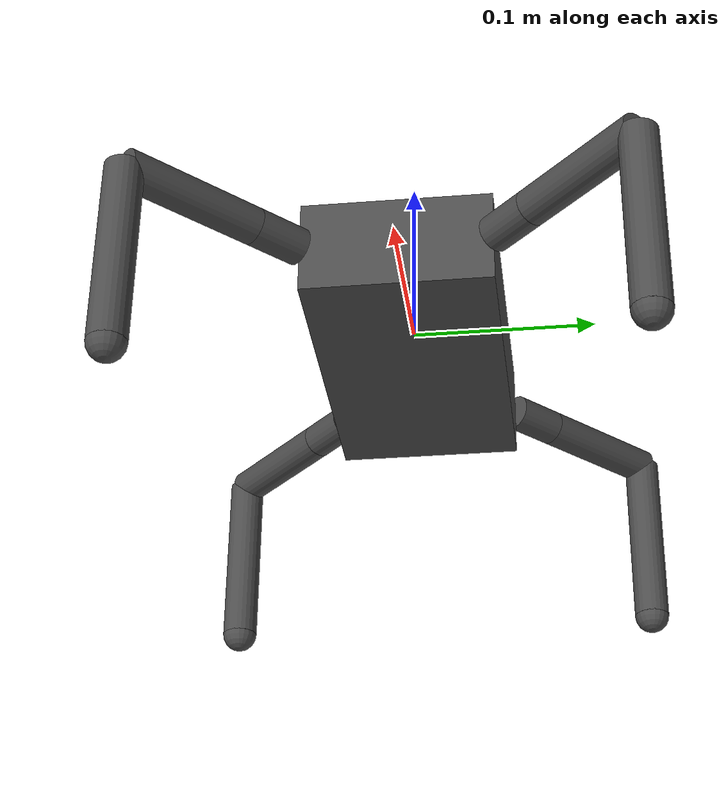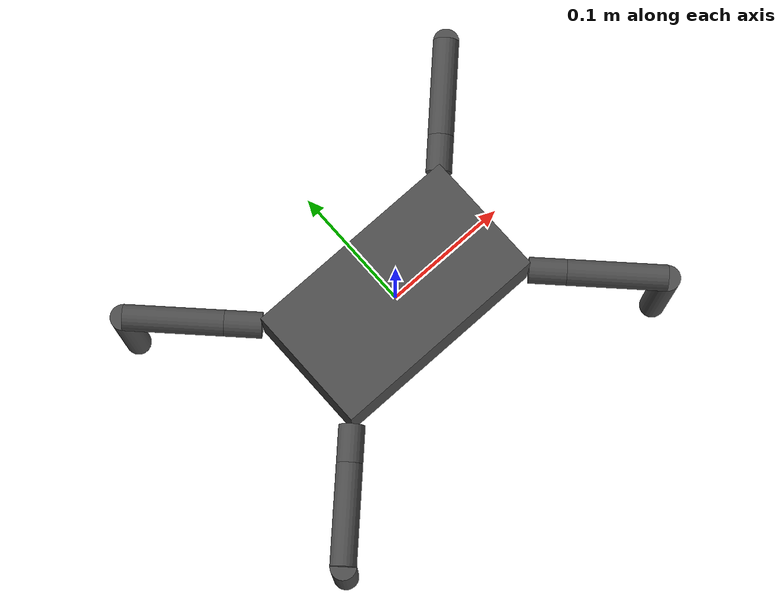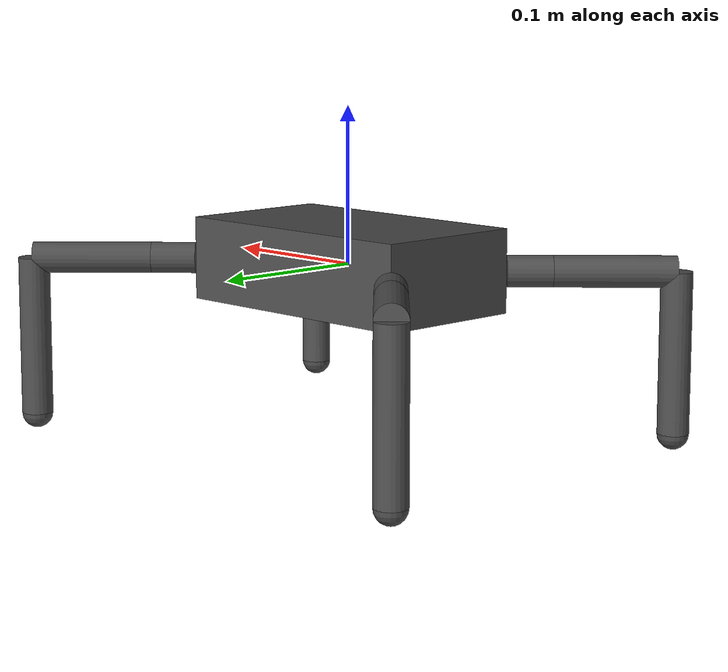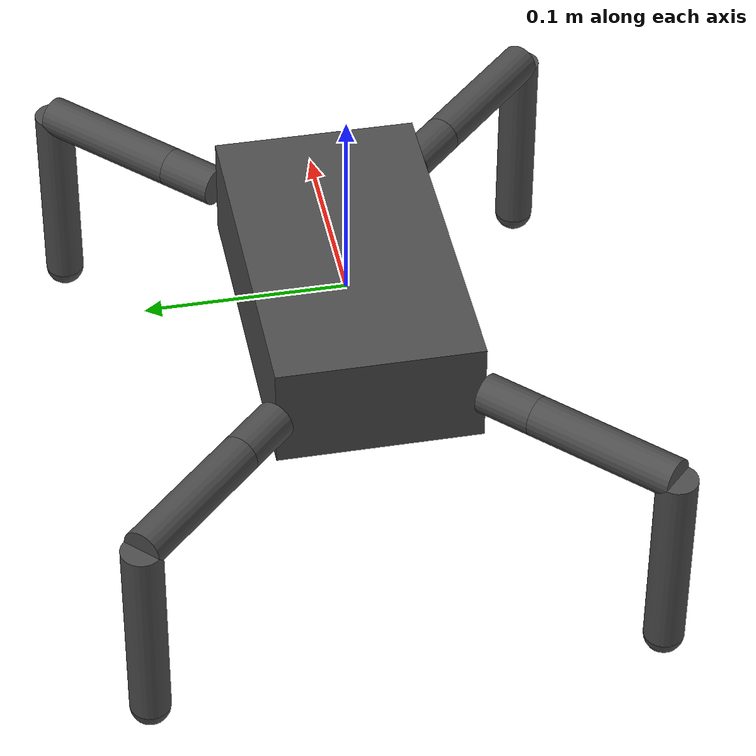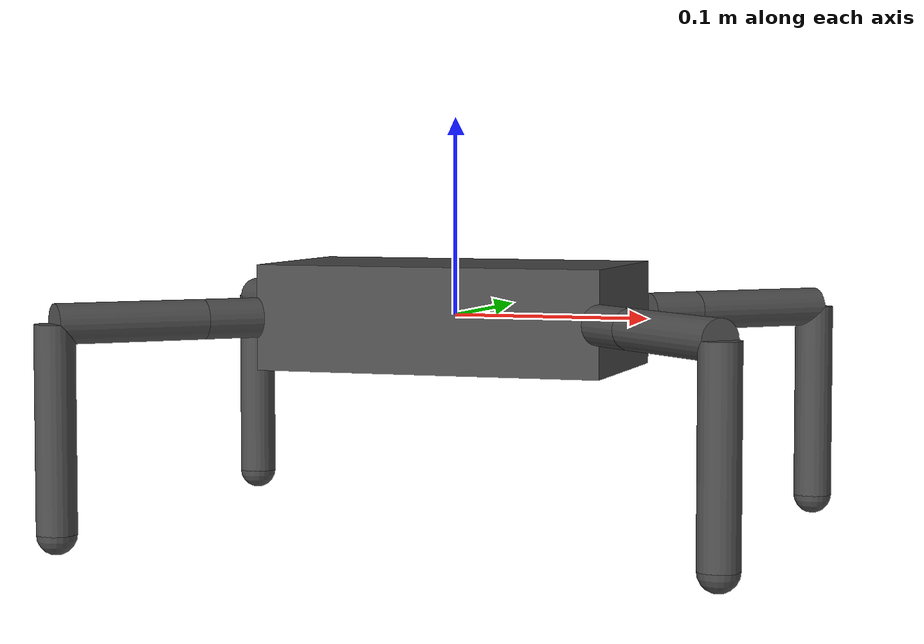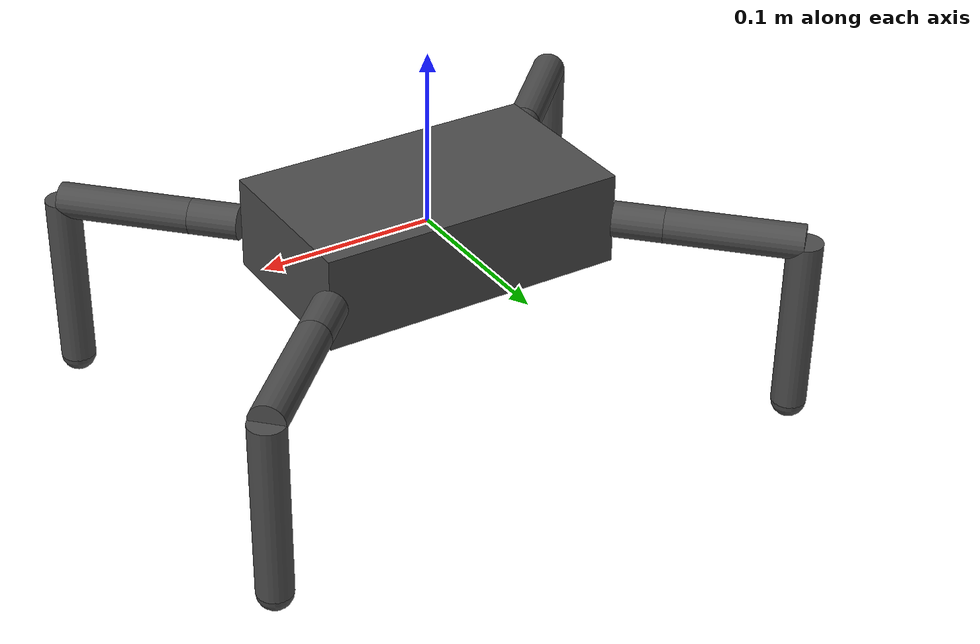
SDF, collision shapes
<sdf version='1.6'>
    <model name='quadruped'>
      <link name='base_link'>
        <inertial>
          <pose>0 0 0 0 -0 0</pose>
          <mass>0.5</mass>
          <inertia>
            <ixx>0.000542083</ixx>
            <ixy>0</ixy>
            <ixz>0</ixz>
            <iyy>0.00142242</iyy>
            <iyz>0</iyz>
            <izz>0.00173042</izz>
          </inertia>
        </inertial>
        <collision name='base_link_collision'>
          <pose>0 0 0 0 -0 0</pose>
          <geometry>
            <box>
              <size>0.177 0.101 0.053</size>
            </box>
          </geometry>
          <surface>
            <friction>
              <ode>
                <mu2>1</mu2>
                <fdir1>1 0 0</fdir1>
                <mu1>1.0</mu1>
              </ode>
            </friction>
            <contact>
              <ode>
                <kp>1e+15</kp>
                <kd>1e+13</kd>
              </ode>
            </contact>
          </surface>
        </collision>
        <visual name='base_link_visual'>
          <pose>0 0 -0.0265 0 -0 0</pose>
          <geometry>
            <mesh>
              <scale>1 1 1</scale>
              <uri>model://quadruped/meshes/hexapod_body.stl</uri>
            </mesh>
          </geometry>
          <material>
            <script>
              <name>Gazebo/DarkGray</name>
              <uri>file://media/materials/scripts/gazebo.material</uri>
            </script>
          </material>
        </visual>
        <gravity>1</gravity>
        <velocity_decay/>
      </link>
      <joint name='coxa_bl_joint' type='revolute'>
        <pose relative_to='base_link'>-0.0885 0.0505 0 0 -0 2.35619</pose>
        <parent>base_link</parent>
        <child>coxa_bl_link</child>
        <axis>
          <xyz>0 0 1</xyz>
          <limit>
            <lower>-1.5708</lower>
            <upper>1.5708</upper>
            <effort>100</effort>
            <velocity>0.5</velocity>
          </limit>
          <dynamics>
            <spring_reference>0</spring_reference>
            <spring_stiffness>0</spring_stiffness>
          </dynamics>
        </axis>
        <physics>
          <ode>
            <limit>
              <cfm>0</cfm>
              <erp>0.2</erp>
            </limit>
          </ode>
        </physics>
      </joint>
      <link name='coxa_bl_link'>
        <pose relative_to='coxa_bl_joint'>0 0 0 0 -0 0</pose>
        <inertial>
          <pose>0.01425 0 0 0 1.5708 0</pose>
          <mass>0.1</mass>
          <inertia>
            <ixx>9.26875e-06</ixx>
            <ixy>0</ixy>
            <ixz>0</ixz>
            <iyy>9.26875e-06</iyy>
            <iyz>0</iyz>
            <izz>5e-06</izz>
          </inertia>
        </inertial>
        <collision name='coxa_bl_link_collision'>
          <pose>0.01425 0 0 0 1.5708 0</pose>
          <geometry>
            <cylinder>
              <length>0.0285</length>
              <radius>0.01</radius>
            </cylinder>
          </geometry>
          <surface>
            <friction>
              <ode>
                <mu2>1</mu2>
                <fdir1>1 0 0</fdir1>
                <mu1>1.0</mu1>
              </ode>
            </friction>
            <contact>
              <ode/>
            </contact>
          </surface>
        </collision>
        <visual name='coxa_bl_link_visual'>
          <pose>0 0 0.0196 0 -0 0</pose>
          <geometry>
            <mesh>
              <scale>1 1 1</scale>
              <uri>model://quadruped/meshes/hexapod_coxa_l.stl</uri>
            </mesh>
          </geometry>
          <material>
            <script>
              <name>Gazebo/DarkGray</name>
              <uri>file://media/materials/scripts/gazebo.material</uri>
            </script>
          </material>
        </visual>
        <gravity>1</gravity>
        <velocity_decay/>
      </link>
      <joint name='femur_bl_joint' type='revolute'>
        <pose relative_to='coxa_bl_link'>0.0285 0 0 0 -0 0</pose>
        <parent>coxa_bl_link</parent>
        <child>femur_bl_link</child>
        <axis>
          <xyz>0 1 0</xyz>
          <limit>
            <lower>-1.5708</lower>
            <upper>1.5708</upper>
            <effort>100</effort>
            <velocity>0.5</velocity>
          </limit>
          <dynamics>
            <spring_reference>0</spring_reference>
            <spring_stiffness>0</spring_stiffness>
          </dynamics>
        </axis>
        <physics>
          <ode>
            <limit>
              <cfm>0</cfm>
              <erp>0.2</erp>
            </limit>
          </ode>
        </physics>
      </joint>
      <link name='femur_bl_link'>
        <pose relative_to='femur_bl_joint'>0 0 0 0 -0 0</pose>
        <inertial>
          <pose>0.0381 0 0 0 1.5708 0</pose>
          <mass>0.1</mass>
          <inertia>
            <ixx>5.0887e-05</ixx>
            <ixy>0</ixy>
            <ixz>0</ixz>
            <iyy>5.0887e-05</iyy>
            <iyz>0</iyz>
            <izz>5e-06</izz>
          </inertia>
        </inertial>
        <collision name='femur_bl_link_collision'>
          <pose>0.0381 0 0 0 1.5708 0</pose>
          <geometry>
            <cylinder>
              <length>0.0762</length>
              <radius>0.01</radius>
            </cylinder>
          </geometry>
          <surface>
            <friction>
              <ode>
                <mu2>1</mu2>
                <fdir1>1 0 0</fdir1>
                <mu1>1.0</mu1>
              </ode>
            </friction>
            <contact>
              <ode/>
            </contact>
          </surface>
        </collision>
        <visual name='femur_bl_link_visual'>
          <pose>0 -0.026 0 0 -0 0</pose>
          <geometry>
            <mesh>
              <scale>1 1 1</scale>
              <uri>model://quadruped/meshes/hexapod_femur_l.stl</uri>
            </mesh>
          </geometry>
          <material>
            <script>
              <name>Gazebo/DarkGray</name>
              <uri>file://media/materials/scripts/gazebo.material</uri>
            </script>
          </material>
        </visual>
        <gravity>1</gravity>
        <velocity_decay/>
      </link>
      <joint name='tibia_bl_joint' type='revolute'>
        <pose relative_to='femur_bl_link'>0.0762 0 0 0 -0 0</pose>
        <parent>femur_bl_link</parent>
        <child>tibia_bl_link</child>
        <axis>
          <xyz>0 1 0</xyz>
          <limit>
            <lower>-1.5708</lower>
            <upper>1.5708</upper>
            <effort>100</effort>
            <velocity>0.5</velocity>
          </limit>
          <dynamics>
            <spring_reference>0</spring_reference>
            <spring_stiffness>0</spring_stiffness>
          </dynamics>
        </axis>
        <physics>
          <ode>
            <limit>
              <cfm>0</cfm>
              <erp>0.2</erp>
            </limit>
          </ode>
        </physics>
      </joint>
      <link name='tibia_bl_link'>
        <pose relative_to='tibia_bl_joint'>0 0 0 0 -0 0</pose>
        <inertial>
          <pose>0 0 -0.051 0 -0 0</pose>
          <mass>0.1</mass>
          <inertia>
            <ixx>8.92e-05</ixx>
            <ixy>0</ixy>
            <ixz>0</ixz>
            <iyy>8.92e-05</iyy>
            <iyz>0</iyz>
            <izz>5e-06</izz>
          </inertia>
        </inertial>
        <collision name='tibia_bl_link_collision'>
          <pose>0 0 -0.051 0 -0 0</pose>
          <geometry>
            <cylinder>
              <length>0.102</length>
              <radius>0.01</radius>
            </cylinder>
          </geometry>
          <surface>
            <friction>
              <ode>
                <mu2>1</mu2>
                <fdir1>1 0 0</fdir1>
                <mu1>1.0</mu1>
              </ode>
            </friction>
            <contact>
              <ode/>
            </contact>
          </surface>
        </collision>
        <collision name='tibia_bl_link_fixed_joint_lump__foot_bl_link_collision_1'>
          <pose>0 0 -0.102 0 -0 0</pose>
          <geometry>
            <sphere>
              <radius>0.01</radius>
            </sphere>
          </geometry>
          <surface>
            <friction>
              <ode>
                <mu2>1</mu2>
                <fdir1>1 0 0</fdir1>
                <mu1>1.0</mu1>
              </ode>
              <torsional>
                <coefficient>1</coefficient>
                <surface_radius>0.01</surface_radius>
                <use_patch_radius>0</use_patch_radius>
              </torsional>
            </friction>
            <contact>
              <ode>
                <kp>1e+15</kp>
                <kd>1e+13</kd>
              </ode>
            </contact>
          </surface>
        </collision>
        <visual name='tibia_bl_link_visual'>
          <pose>0 -0.0185 0 0 -0 0</pose>
          <geometry>
            <mesh>
              <scale>1 1 1</scale>
              <uri>model://quadruped/meshes/hexapod_tibia_l.stl</uri>
            </mesh>
          </geometry>
          <material>
            <script>
              <name>Gazebo/DarkGray</name>
              <uri>file://media/materials/scripts/gazebo.material</uri>
            </script>
          </material>
        </visual>
        <velocity_decay/>
        <gravity>1</gravity>
        <velocity_decay/>
      </link>
      <joint name='coxa_br_joint' type='revolute'>
        <pose relative_to='base_link'>-0.0885 -0.0505 0 0 0 -2.35619</pose>
        <parent>base_link</parent>
        <child>coxa_br_link</child>
        <axis>
          <xyz>0 0 1</xyz>
          <limit>
            <lower>-1.5708</lower>
            <upper>1.5708</upper>
            <effort>100</effort>
            <velocity>0.5</velocity>
          </limit>
          <dynamics>
            <spring_reference>0</spring_reference>
            <spring_stiffness>0</spring_stiffness>
          </dynamics>
        </axis>
        <physics>
          <ode>
            <limit>
              <cfm>0</cfm>
              <erp>0.2</erp>
            </limit>
          </ode>
        </physics>
      </joint>
      <link name='coxa_br_link'>
        <pose relative_to='coxa_br_joint'>0 0 0 0 -0 0</pose>
        <inertial>
          <pose>0.01425 0 0 0 1.5708 0</pose>
          <mass>0.1</mass>
          <inertia>
            <ixx>9.26875e-06</ixx>
            <ixy>0</ixy>
            <ixz>0</ixz>
            <iyy>9.26875e-06</iyy>
            <iyz>0</iyz>
            <izz>5e-06</izz>
          </inertia>
        </inertial>
        <collision name='coxa_br_link_collision'>
          <pose>0.01425 0 0 0 1.5708 0</pose>
          <geometry>
            <cylinder>
              <length>0.0285</length>
              <radius>0.01</radius>
            </cylinder>
          </geometry>
          <surface>
            <friction>
              <ode>
                <mu2>1</mu2>
                <fdir1>1 0 0</fdir1>
                <mu1>1.0</mu1>
              </ode>
            </friction>
            <contact>
              <ode/>
            </contact>
          </surface>
        </collision>
        <visual name='coxa_br_link_visual'>
          <pose>0 0 0.0196 0 -0 0</pose>
          <geometry>
            <mesh>
              <scale>1 1 1</scale>
              <uri>model://quadruped/meshes/hexapod_coxa_r.stl</uri>
            </mesh>
          </geometry>
          <material>
            <script>
              <name>Gazebo/DarkGray</name>
              <uri>file://media/materials/scripts/gazebo.material</uri>
            </script>
          </material>
        </visual>
        <gravity>1</gravity>
        <velocity_decay/>
      </link>
      <joint name='femur_br_joint' type='revolute'>
        <pose relative_to='coxa_br_link'>0.0285 0 0 0 -0 0</pose>
        <parent>coxa_br_link</parent>
        <child>femur_br_link</child>
        <axis>
          <xyz>0 1 0</xyz>
          <limit>
            <lower>-1.5708</lower>
            <upper>1.5708</upper>
            <effort>100</effort>
            <velocity>0.5</velocity>
          </limit>
          <dynamics>
            <spring_reference>0</spring_reference>
            <spring_stiffness>0</spring_stiffness>
          </dynamics>
        </axis>
        <physics>
          <ode>
            <limit>
              <cfm>0</cfm>
              <erp>0.2</erp>
            </limit>
          </ode>
        </physics>
      </joint>
      <link name='femur_br_link'>
        <pose relative_to='femur_br_joint'>0 0 0 0 -0 0</pose>
        <inertial>
          <pose>0.0381 0 0 0 1.5708 0</pose>
          <mass>0.1</mass>
          <inertia>
            <ixx>5.0887e-05</ixx>
            <ixy>0</ixy>
            <ixz>0</ixz>
            <iyy>5.0887e-05</iyy>
            <iyz>0</iyz>
            <izz>5e-06</izz>
          </inertia>
        </inertial>
        <collision name='femur_br_link_collision'>
          <pose>0.0381 0 0 0 1.5708 0</pose>
          <geometry>
            <cylinder>
              <length>0.0762</length>
              <radius>0.01</radius>
            </cylinder>
          </geometry>
          <surface>
            <friction>
              <ode>
                <mu2>1</mu2>
                <fdir1>1 0 0</fdir1>
                <mu1>1.0</mu1>
              </ode>
            </friction>
            <contact>
              <ode/>
            </contact>
          </surface>
        </collision>
        <visual name='femur_br_link_visual'>
          <pose>0 0.026 0 0 -0 0</pose>
          <geometry>
            <mesh>
              <scale>1 1 1</scale>
              <uri>model://quadruped/meshes/hexapod_femur_r.stl</uri>
            </mesh>
          </geometry>
          <material>
            <script>
              <name>Gazebo/DarkGray</name>
              <uri>file://media/materials/scripts/gazebo.material</uri>
            </script>
          </material>
        </visual>
        <gravity>1</gravity>
        <velocity_decay/>
      </link>
      <joint name='tibia_br_joint' type='revolute'>
        <pose relative_to='femur_br_link'>0.0762 0 0 0 -0 0</pose>
        <parent>femur_br_link</parent>
        <child>tibia_br_link</child>
        <axis>
          <xyz>0 1 0</xyz>
          <limit>
            <lower>-1.5708</lower>
            <upper>1.5708</upper>
            <effort>100</effort>
            <velocity>0.5</velocity>
          </limit>
          <dynamics>
            <spring_reference>0</spring_reference>
            <spring_stiffness>0</spring_stiffness>
          </dynamics>
        </axis>
        <physics>
          <ode>
            <limit>
              <cfm>0</cfm>
              <erp>0.2</erp>
            </limit>
          </ode>
        </physics>
      </joint>
      <link name='tibia_br_link'>
        <pose relative_to='tibia_br_joint'>0 0 0 0 -0 0</pose>
        <inertial>
          <pose>0 0 -0.051 0 -0 0</pose>
          <mass>0.1</mass>
          <inertia>
            <ixx>8.92e-05</ixx>
            <ixy>0</ixy>
            <ixz>0</ixz>
            <iyy>8.92e-05</iyy>
            <iyz>0</iyz>
            <izz>5e-06</izz>
          </inertia>
        </inertial>
        <collision name='tibia_br_link_collision'>
          <pose>0 0 -0.051 0 -0 0</pose>
          <geometry>
            <cylinder>
              <length>0.102</length>
              <radius>0.01</radius>
            </cylinder>
          </geometry>
          <surface>
            <friction>
              <ode>
                <mu2>1</mu2>
                <fdir1>1 0 0</fdir1>
                <mu1>1.0</mu1>
              </ode>
            </friction>
            <contact>
              <ode/>
            </contact>
          </surface>
        </collision>
        <collision name='tibia_br_link_fixed_joint_lump__foot_br_link_collision_1'>
          <pose>0 0 -0.102 0 -0 0</pose>
          <geometry>
            <sphere>
              <radius>0.01</radius>
            </sphere>
          </geometry>
          <surface>
            <friction>
              <ode>
                <mu2>1</mu2>
                <fdir1>1 0 0</fdir1>
                <mu1>1.0</mu1>
              </ode>
              <torsional>
                <coefficient>1</coefficient>
                <surface_radius>0.01</surface_radius>
                <use_patch_radius>0</use_patch_radius>
              </torsional>
            </friction>
            <contact>
              <ode>
                <kp>1e+15</kp>
                <kd>1e+13</kd>
              </ode>
            </contact>
          </surface>
        </collision>
        <visual name='tibia_br_link_visual'>
          <pose>0 0.0185 0 0 -0 0</pose>
          <geometry>
            <mesh>
              <scale>1 1 1</scale>
              <uri>model://quadruped/meshes/hexapod_tibia_r.stl</uri>
            </mesh>
          </geometry>
          <material>
            <script>
              <name>Gazebo/DarkGray</name>
              <uri>file://media/materials/scripts/gazebo.material</uri>
            </script>
          </material>
        </visual>
        <velocity_decay/>
        <gravity>1</gravity>
        <velocity_decay/>
      </link>
      <joint name='coxa_fl_joint' type='revolute'>
        <pose relative_to='base_link'>0.0885 0.0505 0 0 -0 0.785398</pose>
        <parent>base_link</parent>
        <child>coxa_fl_link</child>
        <axis>
          <xyz>0 0 1</xyz>
          <limit>
            <lower>-1.5708</lower>
            <upper>1.5708</upper>
            <effort>100</effort>
            <velocity>0.5</velocity>
          </limit>
          <dynamics>
            <spring_reference>0</spring_reference>
            <spring_stiffness>0</spring_stiffness>
          </dynamics>
        </axis>
        <physics>
          <ode>
            <limit>
              <cfm>0</cfm>
              <erp>0.2</erp>
            </limit>
          </ode>
        </physics>
      </joint>
      <link name='coxa_fl_link'>
        <pose relative_to='coxa_fl_joint'>0 0 0 0 -0 0</pose>
        <inertial>
          <pose>0.01425 0 0 0 1.5708 0</pose>
          <mass>0.1</mass>
          <inertia>
            <ixx>9.26875e-06</ixx>
            <ixy>0</ixy>
            <ixz>0</ixz>
            <iyy>9.26875e-06</iyy>
            <iyz>0</iyz>
            <izz>5e-06</izz>
          </inertia>
        </inertial>
        <collision name='coxa_fl_link_collision'>
          <pose>0.01425 0 0 0 1.5708 0</pose>
          <geometry>
            <cylinder>
              <length>0.0285</length>
              <radius>0.01</radius>
            </cylinder>
          </geometry>
          <surface>
            <friction>
              <ode>
                <mu2>1</mu2>
                <fdir1>1 0 0</fdir1>
                <mu1>1.0</mu1>
              </ode>
            </friction>
            <contact>
              <ode/>
            </contact>
          </surface>
        </collision>
        <visual name='coxa_fl_link_visual'>
          <pose>0 0 0.0196 0 -0 0</pose>
          <geometry>
            <mesh>
              <scale>1 1 1</scale>
              <uri>model://quadruped/meshes/hexapod_coxa_l.stl</uri>
            </mesh>
          </geometry>
          <material>
            <script>
              <name>Gazebo/DarkGray</name>
              <uri>file://media/materials/scripts/gazebo.material</uri>
            </script>
          </material>
        </visual>
        <gravity>1</gravity>
        <velocity_decay/>
      </link>
      <joint name='femur_fl_joint' type='revolute'>
        <pose relative_to='coxa_fl_link'>0.0285 0 0 0 -0 0</pose>
        <parent>coxa_fl_link</parent>
        <child>femur_fl_link</child>
        <axis>
          <xyz>0 1 0</xyz>
          <limit>
            <lower>-1.5708</lower>
            <upper>1.5708</upper>
            <effort>100</effort>
            <velocity>0.5</velocity>
          </limit>
          <dynamics>
            <spring_reference>0</spring_reference>
            <spring_stiffness>0</spring_stiffness>
          </dynamics>
        </axis>
        <physics>
          <ode>
            <limit>
              <cfm>0</cfm>
              <erp>0.2</erp>
            </limit>
          </ode>
        </physics>
      </joint>
      <link name='femur_fl_link'>
        <pose relative_to='femur_fl_joint'>0 0 0 0 -0 0</pose>
        <inertial>
          <pose>0.0381 0 0 0 1.5708 0</pose>
          <mass>0.1</mass>
          <inertia>
            <ixx>5.0887e-05</ixx>
            <ixy>0</ixy>
            <ixz>0</ixz>
            <iyy>5.0887e-05</iyy>
            <iyz>0</iyz>
            <izz>5e-06</izz>
          </inertia>
        </inertial>
        <collision name='femur_fl_link_collision'>
          <pose>0.0381 0 0 0 1.5708 0</pose>
          <geometry>
            <cylinder>
              <length>0.0762</length>
              <radius>0.01</radius>
            </cylinder>
          </geometry>
          <surface>
            <friction>
              <ode>
                <mu2>1</mu2>
                <fdir1>1 0 0</fdir1>
                <mu1>1.0</mu1>
              </ode>
            </friction>
            <contact>
              <ode/>
            </contact>
          </surface>
        </collision>
        <visual name='femur_fl_link_visual'>
          <pose>0 -0.026 0 0 -0 0</pose>
          <geometry>
            <mesh>
              <scale>1 1 1</scale>
              <uri>model://quadruped/meshes/hexapod_femur_l.stl</uri>
            </mesh>
          </geometry>
          <material>
            <script>
              <name>Gazebo/DarkGray</name>
              <uri>file://media/materials/scripts/gazebo.material</uri>
            </script>
          </material>
        </visual>
        <gravity>1</gravity>
        <velocity_decay/>
      </link>
      <joint name='tibia_fl_joint' type='revolute'>
        <pose relative_to='femur_fl_link'>0.0762 0 0 0 -0 0</pose>
        <parent>femur_fl_link</parent>
        <child>tibia_fl_link</child>
        <axis>
          <xyz>0 1 0</xyz>
          <limit>
            <lower>-1.5708</lower>
            <upper>1.5708</upper>
            <effort>100</effort>
            <velocity>0.5</velocity>
          </limit>
          <dynamics>
            <spring_reference>0</spring_reference>
            <spring_stiffness>0</spring_stiffness>
          </dynamics>
        </axis>
        <physics>
          <ode>
            <limit>
              <cfm>0</cfm>
              <erp>0.2</erp>
            </limit>
          </ode>
        </physics>
      </joint>
      <link name='tibia_fl_link'>
        <pose relative_to='tibia_fl_joint'>0 0 0 0 -0 0</pose>
        <inertial>
          <pose>0 0 -0.051 0 -0 0</pose>
          <mass>0.1</mass>
          <inertia>
            <ixx>8.92e-05</ixx>
            <ixy>0</ixy>
            <ixz>0</ixz>
            <iyy>8.92e-05</iyy>
            <iyz>0</iyz>
            <izz>5e-06</izz>
          </inertia>
        </inertial>
        <collision name='tibia_fl_link_collision'>
          <pose>0 0 -0.051 0 -0 0</pose>
          <geometry>
            <cylinder>
              <length>0.102</length>
              <radius>0.01</radius>
            </cylinder>
          </geometry>
          <surface>
            <friction>
              <ode>
                <mu2>1</mu2>
                <fdir1>1 0 0</fdir1>
                <mu1>1.0</mu1>
              </ode>
            </friction>
            <contact>
              <ode/>
            </contact>
          </surface>
        </collision>
        <collision name='tibia_fl_link_fixed_joint_lump__foot_fl_link_collision_1'>
          <pose>0 0 -0.102 0 -0 0</pose>
          <geometry>
            <sphere>
              <radius>0.01</radius>
            </sphere>
          </geometry>
          <surface>
            <friction>
              <ode>
                <mu2>1</mu2>
                <fdir1>1 0 0</fdir1>
                <mu1>1.0</mu1>
              </ode>
              <torsional>
                <coefficient>1</coefficient>
                <surface_radius>0.01</surface_radius>
                <use_patch_radius>0</use_patch_radius>
              </torsional>
            </friction>
            <contact>
              <ode>
                <kp>1e+15</kp>
                <kd>1e+13</kd>
              </ode>
            </contact>
          </surface>
        </collision>
        <visual name='tibia_fl_link_visual'>
          <pose>0 -0.0185 0 0 -0 0</pose>
          <geometry>
            <mesh>
              <scale>1 1 1</scale>
              <uri>model://quadruped/meshes/hexapod_tibia_l.stl</uri>
            </mesh>
          </geometry>
          <material>
            <script>
              <name>Gazebo/DarkGray</name>
              <uri>file://media/materials/scripts/gazebo.material</uri>
            </script>
          </material>
        </visual>
        <velocity_decay/>
        <gravity>1</gravity>
        <velocity_decay/>
      </link>
      <joint name='coxa_fr_joint' type='revolute'>
        <pose relative_to='base_link'>0.0885 -0.0505 0 0 0 -0.785398</pose>
        <parent>base_link</parent>
        <child>coxa_fr_link</child>
        <axis>
          <xyz>0 0 1</xyz>
          <limit>
            <lower>-1.5708</lower>
            <upper>1.5708</upper>
            <effort>100</effort>
            <velocity>0.5</velocity>
          </limit>
          <dynamics>
            <spring_reference>0</spring_reference>
            <spring_stiffness>0</spring_stiffness>
          </dynamics>
        </axis>
        <physics>
          <ode>
            <limit>
              <cfm>0</cfm>
              <erp>0.2</erp>
            </limit>
          </ode>
        </physics>
      </joint>
      <link name='coxa_fr_link'>
        <pose relative_to='coxa_fr_joint'>0 0 0 0 -0 0</pose>
        <inertial>
          <pose>0.01425 0 0 0 1.5708 0</pose>
          <mass>0.1</mass>
          <inertia>
            <ixx>9.26875e-06</ixx>
            <ixy>0</ixy>
            <ixz>0</ixz>
            <iyy>9.26875e-06</iyy>
            <iyz>0</iyz>
            <izz>5e-06</izz>
          </inertia>
        </inertial>
        <collision name='coxa_fr_link_collision'>
          <pose>0.01425 0 0 0 1.5708 0</pose>
          <geometry>
            <cylinder>
              <length>0.0285</length>
              <radius>0.01</radius>
            </cylinder>
          </geometry>
          <surface>
            <friction>
              <ode>
                <mu2>1</mu2>
                <fdir1>1 0 0</fdir1>
                <mu1>1.0</mu1>
              </ode>
            </friction>
            <contact>
              <ode/>
            </contact>
          </surface>
        </collision>
        <visual name='coxa_fr_link_visual'>
          <pose>0 0 0.0196 0 -0 0</pose>
          <geometry>
            <mesh>
              <scale>1 1 1</scale>
              <uri>model://quadruped/meshes/hexapod_coxa_r.stl</uri>
            </mesh>
          </geometry>
          <material>
            <script>
              <name>Gazebo/DarkGray</name>
              <uri>file://media/materials/scripts/gazebo.material</uri>
            </script>
          </material>
        </visual>
        <gravity>1</gravity>
        <velocity_decay/>
      </link>
      <joint name='femur_fr_joint' type='revolute'>
        <pose relative_to='coxa_fr_link'>0.0285 0 0 0 -0 0</pose>
        <parent>coxa_fr_link</parent>
        <child>femur_fr_link</child>
        <axis>
          <xyz>0 1 0</xyz>
          <limit>
            <lower>-1.5708</lower>
            <upper>1.5708</upper>
            <effort>100</effort>
            <velocity>0.5</velocity>
          </limit>
          <dynamics>
            <spring_reference>0</spring_reference>
            <spring_stiffness>0</spring_stiffness>
          </dynamics>
        </axis>
        <physics>
          <ode>
            <limit>
              <cfm>0</cfm>
              <erp>0.2</erp>
            </limit>
          </ode>
        </physics>
      </joint>
      <link name='femur_fr_link'>
        <pose relative_to='femur_fr_joint'>0 0 0 0 -0 0</pose>
        <inertial>
          <pose>0.0381 0 0 0 1.5708 0</pose>
          <mass>0.1</mass>
          <inertia>
            <ixx>5.0887e-05</ixx>
            <ixy>0</ixy>
            <ixz>0</ixz>
            <iyy>5.0887e-05</iyy>
            <iyz>0</iyz>
            <izz>5e-06</izz>
          </inertia>
        </inertial>
        <collision name='femur_fr_link_collision'>
          <pose>0.0381 0 0 0 1.5708 0</pose>
          <geometry>
            <cylinder>
              <length>0.0762</length>
              <radius>0.01</radius>
            </cylinder>
          </geometry>
          <surface>
            <friction>
              <ode>
                <mu2>1</mu2>
                <fdir1>1 0 0</fdir1>
                <mu1>1.0</mu1>
              </ode>
            </friction>
            <contact>
              <ode/>
            </contact>
          </surface>
        </collision>
        <visual name='femur_fr_link_visual'>
          <pose>0 0.026 0 0 -0 0</pose>
          <geometry>
            <mesh>
              <scale>1 1 1</scale>
              <uri>model://quadruped/meshes/hexapod_femur_r.stl</uri>
            </mesh>
          </geometry>
          <material>
            <script>
              <name>Gazebo/DarkGray</name>
              <uri>file://media/materials/scripts/gazebo.material</uri>
            </script>
          </material>
        </visual>
        <gravity>1</gravity>
        <velocity_decay/>
      </link>
      <joint name='tibia_fr_joint' type='revolute'>
        <pose relative_to='femur_fr_link'>0.0762 0 0 0 -0 0</pose>
        <parent>femur_fr_link</parent>
        <child>tibia_fr_link</child>
        <axis>
          <xyz>0 1 0</xyz>
          <limit>
            <lower>-1.5708</lower>
            <upper>1.5708</upper>
            <effort>100</effort>
            <velocity>0.5</velocity>
          </limit>
          <dynamics>
            <spring_reference>0</spring_reference>
            <spring_stiffness>0</spring_stiffness>
          </dynamics>
        </axis>
        <physics>
          <ode>
            <limit>
              <cfm>0</cfm>
              <erp>0.2</erp>
            </limit>
          </ode>
        </physics>
      </joint>
      <link name='tibia_fr_link'>
        <pose relative_to='tibia_fr_joint'>0 0 0 0 -0 0</pose>
        <inertial>
          <pose>0 0 -0.051 0 -0 0</pose>
          <mass>0.1</mass>
          <inertia>
            <ixx>8.92e-05</ixx>
            <ixy>0</ixy>
            <ixz>0</ixz>
            <iyy>8.92e-05</iyy>
            <iyz>0</iyz>
            <izz>5e-06</izz>
          </inertia>
        </inertial>
        <collision name='tibia_fr_link_collision'>
          <pose>0 0 -0.051 0 -0 0</pose>
          <geometry>
            <cylinder>
              <length>0.102</length>
              <radius>0.01</radius>
            </cylinder>
          </geometry>
          <surface>
            <friction>
              <ode>
                <mu2>1</mu2>
                <fdir1>1 0 0</fdir1>
                <mu1>1.0</mu1>
              </ode>
            </friction>
            <contact>
              <ode/>
            </contact>
          </surface>
        </collision>
        <collision name='tibia_fr_link_fixed_joint_lump__foot_fr_link_collision_1'>
          <pose>0 0 -0.102 0 -0 0</pose>
          <geometry>
            <sphere>
              <radius>0.01</radius>
            </sphere>
          </geometry>
          <surface>
            <friction>
              <ode>
                <mu2>1</mu2>
                <fdir1>1 0 0</fdir1>
                <mu1>1.0</mu1>
              </ode>
              <torsional>
                <coefficient>1</coefficient>
                <surface_radius>0.01</surface_radius>
                <use_patch_radius>0</use_patch_radius>
              </torsional>
            </friction>
            <contact>
              <ode>
                <kp>1e+15</kp>
                <kd>1e+13</kd>
              </ode>
            </contact>
          </surface>
        </collision>
        <visual name='tibia_fr_link_visual'>
          <pose>0 0.0185 0 0 -0 0</pose>
          <geometry>
            <mesh>
              <scale>1 1 1</scale>
              <uri>model://quadruped/meshes/hexapod_tibia_r.stl</uri>
            </mesh>
          </geometry>
          <material>
            <script>
              <name>Gazebo/DarkGray</name>
              <uri>file://media/materials/scripts/gazebo.material</uri>
            </script>
          </material>
        </visual>
        <velocity_decay/>
        <gravity>1</gravity>
        <velocity_decay/>
      </link>
    </model>
  </sdf>
